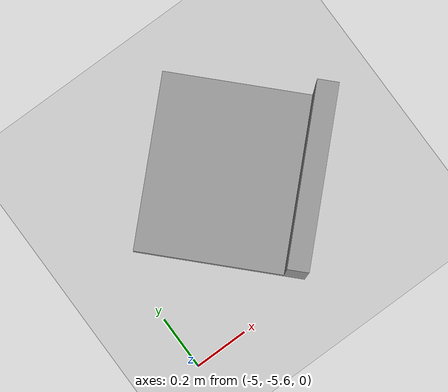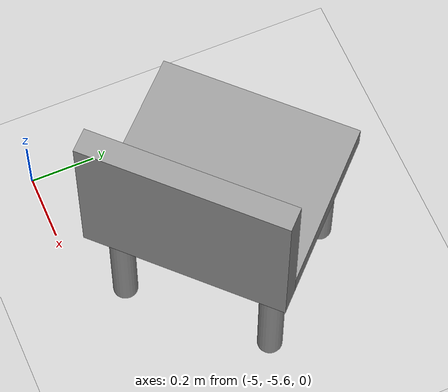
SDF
<sdf version="1.6">
 <world name="default">
  <model name="ground_plane">
   <static>1</static>
   <link name="link">
    <collision name="collision">
     <geometry><plane><normal>0 0 1</normal><size>100 100</size></plane></geometry>
     <surface>
      <contact><collide_bitmask>65535</collide_bitmask></contact>
      <friction><ode><mu>100</mu><mu2>50</mu2></ode></friction>
     </surface>
    </collision>
    <visual name="visual">
     <cast_shadows>0</cast_shadows>
     <geometry><plane><normal>0 0 1</normal><size>100 100</size></plane></geometry>
     <material>
      <script><uri>file://media/materials/scripts/gazebo.material</uri><name>Gazebo/Grey</name></script>
     </material>
    </visual>
   </link>
  </model>
  <model name="chair">
   <link name="link_0">
    <inertial>
     <mass>1</mass>
     <inertia>
      <ixx>0.166667</ixx>
      <ixy>0</ixy>
      <ixz>0</ixz>
      <iyy>0.166667</iyy>
      <iyz>0</iyz>
      <izz>0.166667</izz>
     </inertia>
    </inertial>
    <pose>-0.067504 0 0.137499 0 -0 0</pose>
    <visual name="visual">
     <geometry><box><size>0.5 0.6 0.07</size></box></geometry>
     <material>
      <lighting>1</lighting>
      <script><uri>file://media/materials/scripts/gazebo.material</uri><name>Gazebo/Grey</name></script>
      <shader type="pixel"><normal_map>__default__</normal_map></shader>
      <ambient>0.3 0.3 0.3 1</ambient>
      <diffuse>0.7 0.7 0.7 1</diffuse>
      <specular>0.01 0.01 0.01 1</specular>
      <emissive>0 0 0 1</emissive>
     </material>
    </visual>
    <collision name="collision">
     <geometry><box><size>0.5 0.6 0.07</size></box></geometry>
     <surface>
      <friction>
       <ode><mu>1</mu><mu2>1</mu2><fdir1>0 0 0</fdir1><slip1>0</slip1><slip2>0</slip2></ode>
       <torsional>
        <coefficient>1</coefficient>
        <patch_radius>0</patch_radius>
        <surface_radius>0</surface_radius>
        <use_patch_radius>1</use_patch_radius>
        <ode><slip>0</slip></ode>
       </torsional>
      </friction>
      <bounce><restitution_coefficient>0</restitution_coefficient><threshold>1e+06</threshold></bounce>
      <contact>
       <collide_without_contact>0</collide_without_contact>
       <collide_without_contact_bitmask>1</collide_without_contact_bitmask>
       <collide_bitmask>1</collide_bitmask>
       <ode>
        <soft_cfm>0</soft_cfm>
        <soft_erp>0.2</soft_erp>
        <kp>1e+13</kp>
        <kd>1</kd>
        <max_vel>0.01</max_vel>
        <min_depth>0</min_depth>
       </ode>
       <bullet>
        <split_impulse>1</split_impulse>
        <split_impulse_penetration_threshold>-0.01</split_impulse_penetration_threshold>
        <soft_cfm>0</soft_cfm>
        <soft_erp>0.2</soft_erp>
        <kp>1e+13</kp>
        <kd>1</kd>
       </bullet>
      </contact>
     </surface>
    </collision>
   </link>
   <link name="link_0_clone">
    <inertial>
     <mass>1</mass>
     <inertia>
      <ixx>0.166667</ixx>
      <ixy>0</ixy>
      <ixz>0</ixz>
      <iyy>0.166667</iyy>
      <iyz>0</iyz>
      <izz>0.166667</izz>
     </inertia>
    </inertial>
    <pose>0.21752 0 0.352503 0 1.5707 0</pose>
    <visual name="visual">
     <geometry><box><size>0.5 0.6 0.07</size></box></geometry>
     <material>
      <lighting>1</lighting>
      <script><uri>file://media/materials/scripts/gazebo.material</uri><name>Gazebo/Grey</name></script>
      <shader type="pixel"><normal_map>__default__</normal_map></shader>
      <ambient>0.3 0.3 0.3 1</ambient>
      <diffuse>0.7 0.7 0.7 1</diffuse>
      <specular>0.01 0.01 0.01 1</specular>
      <emissive>0 0 0 1</emissive>
     </material>
    </visual>
    <collision name="collision">
     <geometry><box><size>0.5 0.6 0.07</size></box></geometry>
     <surface>
      <friction>
       <ode><mu>1</mu><mu2>1</mu2><fdir1>0 0 0</fdir1><slip1>0</slip1><slip2>0</slip2></ode>
       <torsional>
        <coefficient>1</coefficient>
        <patch_radius>0</patch_radius>
        <surface_radius>0</surface_radius>
        <use_patch_radius>1</use_patch_radius>
        <ode><slip>0</slip></ode>
       </torsional>
      </friction>
      <bounce><restitution_coefficient>0</restitution_coefficient><threshold>1e+06</threshold></bounce>
      <contact>
       <collide_without_contact>0</collide_without_contact>
       <collide_without_contact_bitmask>1</collide_without_contact_bitmask>
       <collide_bitmask>1</collide_bitmask>
       <ode>
        <soft_cfm>0</soft_cfm>
        <soft_erp>0.2</soft_erp>
        <kp>1e+13</kp>
        <kd>1</kd>
        <max_vel>0.01</max_vel>
        <min_depth>0</min_depth>
       </ode>
       <bullet>
        <split_impulse>1</split_impulse>
        <split_impulse_penetration_threshold>-0.01</split_impulse_penetration_threshold>
        <soft_cfm>0</soft_cfm>
        <soft_erp>0.2</soft_erp>
        <kp>1e+13</kp>
        <kd>1</kd>
       </bullet>
      </contact>
     </surface>
    </collision>
   </link>
   <link name="link_1">
    <inertial>
     <mass>1</mass>
     <inertia><ixx>0.145833</ixx><ixy>0</ixy><ixz>0</ixz><iyy>0.145833</iyy><iyz>0</iyz><izz>0.125</izz></inertia>
    </inertial>
    <pose>-0.237504 -0.23 -0.122501 0 -0 0</pose>
    <visual name="visual">
     <geometry><cylinder><radius>0.037</radius><length>0.45</length></cylinder></geometry>
     <material>
      <lighting>1</lighting>
      <script><uri>file://media/materials/scripts/gazebo.material</uri><name>Gazebo/Grey</name></script>
      <shader type="pixel"><normal_map>__default__</normal_map></shader>
      <ambient>0.3 0.3 0.3 1</ambient>
      <diffuse>0.7 0.7 0.7 1</diffuse>
      <specular>0.01 0.01 0.01 1</specular>
      <emissive>0 0 0 1</emissive>
     </material>
    </visual>
    <collision name="collision">
     <geometry><cylinder><radius>0.037</radius><length>0.45</length></cylinder></geometry>
     <surface>
      <friction>
       <ode><mu>1</mu><mu2>1</mu2><fdir1>0 0 0</fdir1><slip1>0</slip1><slip2>0</slip2></ode>
       <torsional>
        <coefficient>1</coefficient>
        <patch_radius>0</patch_radius>
        <surface_radius>0</surface_radius>
        <use_patch_radius>1</use_patch_radius>
        <ode><slip>0</slip></ode>
       </torsional>
      </friction>
      <bounce><restitution_coefficient>0</restitution_coefficient><threshold>1e+06</threshold></bounce>
      <contact>
       <collide_without_contact>0</collide_without_contact>
       <collide_without_contact_bitmask>1</collide_without_contact_bitmask>
       <collide_bitmask>1</collide_bitmask>
       <ode>
        <soft_cfm>0</soft_cfm>
        <soft_erp>0.2</soft_erp>
        <kp>1e+13</kp>
        <kd>1</kd>
        <max_vel>0.01</max_vel>
        <min_depth>0</min_depth>
       </ode>
       <bullet>
        <split_impulse>1</split_impulse>
        <split_impulse_penetration_threshold>-0.01</split_impulse_penetration_threshold>
        <soft_cfm>0</soft_cfm>
        <soft_erp>0.2</soft_erp>
        <kp>1e+13</kp>
        <kd>1</kd>
       </bullet>
      </contact>
     </surface>
    </collision>
   </link>
   <link name="link_1_clone">
    <inertial>
     <mass>1</mass>
     <inertia><ixx>0.145833</ixx><ixy>0</ixy><ixz>0</ixz><iyy>0.145833</iyy><iyz>0</iyz><izz>0.125</izz></inertia>
    </inertial>
    <pose>-0.237504 0.23 -0.122501 0 -0 0</pose>
    <visual name="visual">
     <geometry><cylinder><radius>0.037</radius><length>0.45</length></cylinder></geometry>
     <material>
      <lighting>1</lighting>
      <script><uri>file://media/materials/scripts/gazebo.material</uri><name>Gazebo/Grey</name></script>
      <shader type="pixel"><normal_map>__default__</normal_map></shader>
      <ambient>0.3 0.3 0.3 1</ambient>
      <diffuse>0.7 0.7 0.7 1</diffuse>
      <specular>0.01 0.01 0.01 1</specular>
      <emissive>0 0 0 1</emissive>
     </material>
    </visual>
    <collision name="collision">
     <geometry><cylinder><radius>0.037</radius><length>0.45</length></cylinder></geometry>
     <surface>
      <friction>
       <ode><mu>1</mu><mu2>1</mu2><fdir1>0 0 0</fdir1><slip1>0</slip1><slip2>0</slip2></ode>
       <torsional>
        <coefficient>1</coefficient>
        <patch_radius>0</patch_radius>
        <surface_radius>0</surface_radius>
        <use_patch_radius>1</use_patch_radius>
        <ode><slip>0</slip></ode>
       </torsional>
      </friction>
      <bounce><restitution_coefficient>0</restitution_coefficient><threshold>1e+06</threshold></bounce>
      <contact>
       <collide_without_contact>0</collide_without_contact>
       <collide_without_contact_bitmask>1</collide_without_contact_bitmask>
       <collide_bitmask>1</collide_bitmask>
       <ode>
        <soft_cfm>0</soft_cfm>
        <soft_erp>0.2</soft_erp>
        <kp>1e+13</kp>
        <kd>1</kd>
        <max_vel>0.01</max_vel>
        <min_depth>0</min_depth>
       </ode>
       <bullet>
        <split_impulse>1</split_impulse>
        <split_impulse_penetration_threshold>-0.01</split_impulse_penetration_threshold>
        <soft_cfm>0</soft_cfm>
        <soft_erp>0.2</soft_erp>
        <kp>1e+13</kp>
        <kd>1</kd>
       </bullet>
      </contact>
     </surface>
    </collision>
   </link>
   <link name="link_1_clone_0">
    <inertial>
     <mass>1</mass>
     <inertia><ixx>0.145833</ixx><ixy>0</ixy><ixz>0</ixz><iyy>0.145833</iyy><iyz>0</iyz><izz>0.125</izz></inertia>
    </inertial>
    <pose>0.162496 0.23 -0.122501 0 -0 0</pose>
    <visual name="visual">
     <geometry><cylinder><radius>0.037</radius><length>0.45</length></cylinder></geometry>
     <material>
      <lighting>1</lighting>
      <script><uri>file://media/materials/scripts/gazebo.material</uri><name>Gazebo/Grey</name></script>
      <shader type="pixel"><normal_map>__default__</normal_map></shader>
      <ambient>0.3 0.3 0.3 1</ambient>
      <diffuse>0.7 0.7 0.7 1</diffuse>
      <specular>0.01 0.01 0.01 1</specular>
      <emissive>0 0 0 1</emissive>
     </material>
    </visual>
    <collision name="collision">
     <geometry><cylinder><radius>0.037</radius><length>0.45</length></cylinder></geometry>
     <surface>
      <friction>
       <ode><mu>1</mu><mu2>1</mu2><fdir1>0 0 0</fdir1><slip1>0</slip1><slip2>0</slip2></ode>
       <torsional>
        <coefficient>1</coefficient>
        <patch_radius>0</patch_radius>
        <surface_radius>0</surface_radius>
        <use_patch_radius>1</use_patch_radius>
        <ode><slip>0</slip></ode>
       </torsional>
      </friction>
      <bounce><restitution_coefficient>0</restitution_coefficient><threshold>1e+06</threshold></bounce>
      <contact>
       <collide_without_contact>0</collide_without_contact>
       <collide_without_contact_bitmask>1</collide_without_contact_bitmask>
       <collide_bitmask>1</collide_bitmask>
       <ode>
        <soft_cfm>0</soft_cfm>
        <soft_erp>0.2</soft_erp>
        <kp>1e+13</kp>
        <kd>1</kd>
        <max_vel>0.01</max_vel>
        <min_depth>0</min_depth>
       </ode>
       <bullet>
        <split_impulse>1</split_impulse>
        <split_impulse_penetration_threshold>-0.01</split_impulse_penetration_threshold>
        <soft_cfm>0</soft_cfm>
        <soft_erp>0.2</soft_erp>
        <kp>1e+13</kp>
        <kd>1</kd>
       </bullet>
      </contact>
     </surface>
    </collision>
   </link>
   <link name="link_1_clone_1">
    <inertial>
     <mass>1</mass>
     <inertia><ixx>0.145833</ixx><ixy>0</ixy><ixz>0</ixz><iyy>0.145833</iyy><iyz>0</iyz><izz>0.125</izz></inertia>
    </inertial>
    <pose>0.162496 -0.23 -0.122501 0 -0 0</pose>
    <visual name="visual">
     <geometry><cylinder><radius>0.037</radius><length>0.45</length></cylinder></geometry>
     <material>
      <lighting>1</lighting>
      <script><uri>file://media/materials/scripts/gazebo.material</uri><name>Gazebo/Grey</name></script>
      <shader type="pixel"><normal_map>__default__</normal_map></shader>
      <ambient>0.3 0.3 0.3 1</ambient>
      <diffuse>0.7 0.7 0.7 1</diffuse>
      <specular>0.01 0.01 0.01 1</specular>
      <emissive>0 0 0 1</emissive>
     </material>
    </visual>
    <collision name="collision">
     <geometry><cylinder><radius>0.037</radius><length>0.45</length></cylinder></geometry>
     <surface>
      <friction>
       <ode><mu>1</mu><mu2>1</mu2><fdir1>0 0 0</fdir1><slip1>0</slip1><slip2>0</slip2></ode>
       <torsional>
        <coefficient>1</coefficient>
        <patch_radius>0</patch_radius>
        <surface_radius>0</surface_radius>
        <use_patch_radius>1</use_patch_radius>
        <ode><slip>0</slip></ode>
       </torsional>
      </friction>
      <bounce><restitution_coefficient>0</restitution_coefficient><threshold>1e+06</threshold></bounce>
      <contact>
       <collide_without_contact>0</collide_without_contact>
       <collide_without_contact_bitmask>1</collide_without_contact_bitmask>
       <collide_bitmask>1</collide_bitmask>
       <ode>
        <soft_cfm>0</soft_cfm>
        <soft_erp>0.2</soft_erp>
        <kp>1e+13</kp>
        <kd>1</kd>
        <max_vel>0.01</max_vel>
        <min_depth>0</min_depth>
       </ode>
       <bullet>
        <split_impulse>1</split_impulse>
        <split_impulse_penetration_threshold>-0.01</split_impulse_penetration_threshold>
        <soft_cfm>0</soft_cfm>
        <soft_erp>0.2</soft_erp>
        <kp>1e+13</kp>
        <kd>1</kd>
       </bullet>
      </contact>
     </surface>
    </collision>
   </link>
   <joint name="link_0_JOINT_0" type="fixed">
    <parent>link_0</parent>
    <child>link_0_clone</child>
    <physics>
     <ode><limit><cfm>0</cfm><erp>0.2</erp></limit><suspension><cfm>0</cfm><erp>0.2</erp></suspension></ode>
    </physics>
   </joint>
   <joint name="link_0_JOINT_1" type="fixed">
    <parent>link_0</parent>
    <child>link_1</child>
    <physics>
     <ode><limit><cfm>0</cfm><erp>0.2</erp></limit><suspension><cfm>0</cfm><erp>0.2</erp></suspension></ode>
    </physics>
   </joint>
   <joint name="link_0_JOINT_2" type="fixed">
    <parent>link_0</parent>
    <child>link_1_clone_0</child>
    <physics>
     <ode><limit><cfm>0</cfm><erp>0.2</erp></limit><suspension><cfm>0</cfm><erp>0.2</erp></suspension></ode>
    </physics>
   </joint>
   <joint name="link_0_JOINT_3" type="fixed">
    <parent>link_0</parent>
    <child>link_1_clone</child>
    <physics>
     <ode><limit><cfm>0</cfm><erp>0.2</erp></limit><suspension><cfm>0</cfm><erp>0.2</erp></suspension></ode>
    </physics>
   </joint>
   <joint name="link_0_JOINT_4" type="fixed">
    <parent>link_0</parent>
    <child>link_1_clone_1</child>
    <physics>
     <ode><limit><cfm>0</cfm><erp>0.2</erp></limit><suspension><cfm>0</cfm><erp>0.2</erp></suspension></ode>
    </physics>
   </joint>
   <static>0</static>
   <pose>-4.50838 -5.19331 0.347492 0 0 -0.793483</pose>
  </model>
 </world>
</sdf>
